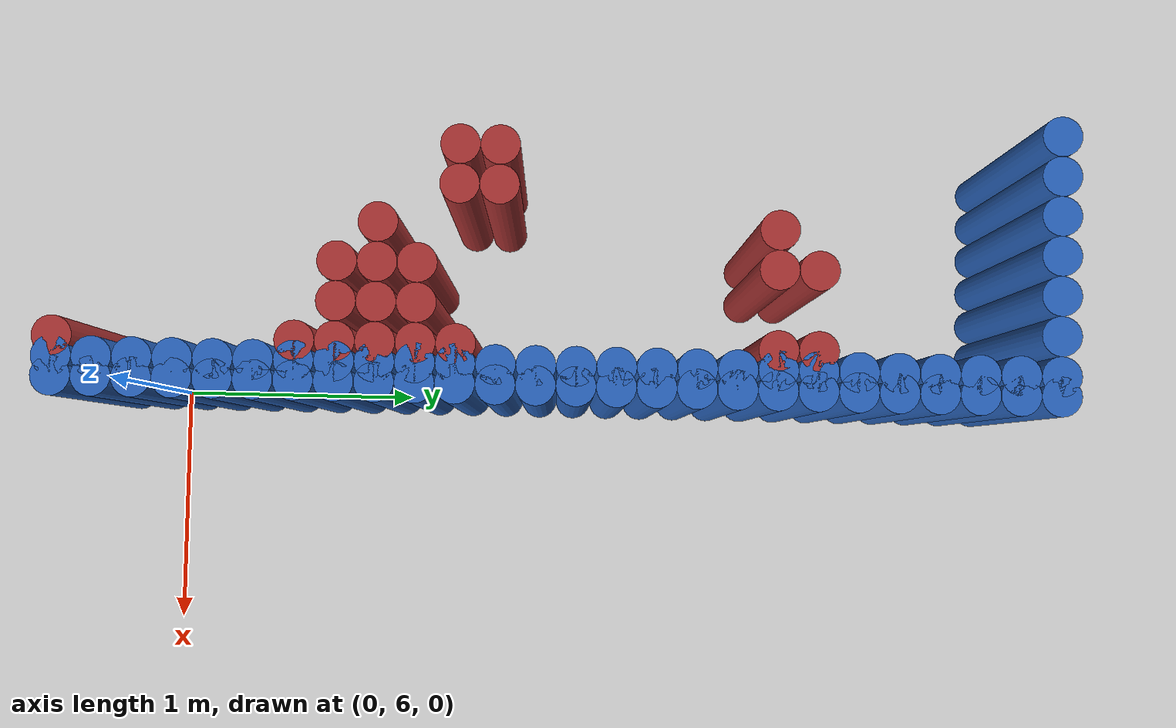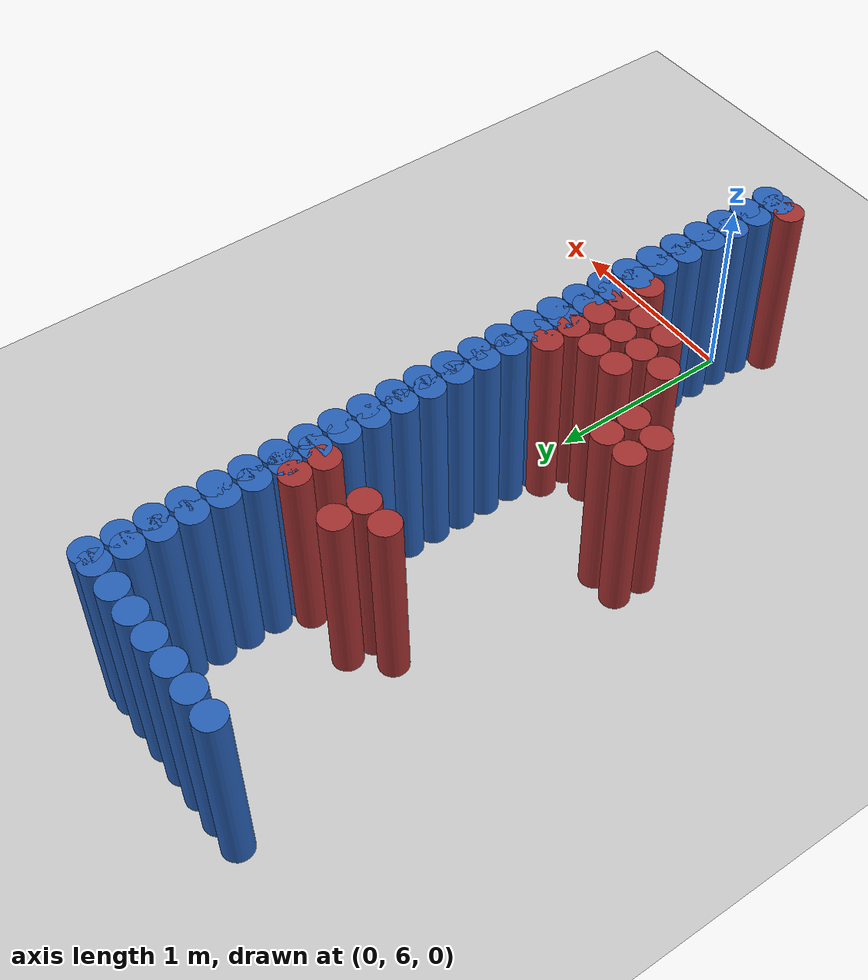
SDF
<sdf version="1.6">
 <world name="barn_world">
  <model name="ground_plane">
   <static>1</static>
   <link name="link">
    <collision name="collision">
     <geometry><plane><normal>0 0 1</normal><size>100 100</size></plane></geometry>
    </collision>
    <visual name="visual">
     <geometry><plane><normal>0 0 1</normal><size>100 100</size></plane></geometry>
     <material>
      <script><uri>file://media/materials/scripts/gazebo.material</uri><name>Gazebo/Grey</name></script>
     </material>
    </visual>
   </link>
  </model>
  <model name="unit_cylinder_256">
   <static>1</static>
   <pose>-0.9000 7.2750 0.5 0 0 0</pose>
   <link name="link">
    <collision name="collision">
     <geometry><cylinder><radius>0.075</radius><length>1</length></cylinder></geometry>
    </collision>
    <visual name="visual">
     <geometry><cylinder><radius>0.075</radius><length>1</length></cylinder></geometry>
     <material><ambient>0.648 0.192 0.192 1</ambient><diffuse>0.648 0.192 0.192 1</diffuse></material>
    </visual>
   </link>
  </model>
  <model name="unit_cylinder_257">
   <static>1</static>
   <pose>-0.9000 7.4250 0.5 0 0 0</pose>
   <link name="link">
    <collision name="collision">
     <geometry><cylinder><radius>0.075</radius><length>1</length></cylinder></geometry>
    </collision>
    <visual name="visual">
     <geometry><cylinder><radius>0.075</radius><length>1</length></cylinder></geometry>
     <material><ambient>0.648 0.192 0.192 1</ambient><diffuse>0.648 0.192 0.192 1</diffuse></material>
    </visual>
   </link>
  </model>
  <model name="unit_cylinder_258">
   <static>1</static>
   <pose>-0.7500 7.2750 0.5 0 0 0</pose>
   <link name="link">
    <collision name="collision">
     <geometry><cylinder><radius>0.075</radius><length>1</length></cylinder></geometry>
    </collision>
    <visual name="visual">
     <geometry><cylinder><radius>0.075</radius><length>1</length></cylinder></geometry>
     <material><ambient>0.648 0.192 0.192 1</ambient><diffuse>0.648 0.192 0.192 1</diffuse></material>
    </visual>
   </link>
  </model>
  <model name="unit_cylinder_259">
   <static>1</static>
   <pose>-0.7500 7.4250 0.5 0 0 0</pose>
   <link name="link">
    <collision name="collision">
     <geometry><cylinder><radius>0.075</radius><length>1</length></cylinder></geometry>
    </collision>
    <visual name="visual">
     <geometry><cylinder><radius>0.075</radius><length>1</length></cylinder></geometry>
     <material><ambient>0.648 0.192 0.192 1</ambient><diffuse>0.648 0.192 0.192 1</diffuse></material>
    </visual>
   </link>
  </model>
  <model name="unit_cylinder_260">
   <static>1</static>
   <pose>-0.6000 6.9750 0.5 0 0 0</pose>
   <link name="link">
    <collision name="collision">
     <geometry><cylinder><radius>0.075</radius><length>1</length></cylinder></geometry>
    </collision>
    <visual name="visual">
     <geometry><cylinder><radius>0.075</radius><length>1</length></cylinder></geometry>
     <material><ambient>0.648 0.192 0.192 1</ambient><diffuse>0.648 0.192 0.192 1</diffuse></material>
    </visual>
   </link>
  </model>
  <model name="unit_cylinder_261">
   <static>1</static>
   <pose>-0.6000 8.4750 0.5 0 0 0</pose>
   <link name="link">
    <collision name="collision">
     <geometry><cylinder><radius>0.075</radius><length>1</length></cylinder></geometry>
    </collision>
    <visual name="visual">
     <geometry><cylinder><radius>0.075</radius><length>1</length></cylinder></geometry>
     <material><ambient>0.648 0.192 0.192 1</ambient><diffuse>0.648 0.192 0.192 1</diffuse></material>
    </visual>
   </link>
  </model>
  <model name="unit_cylinder_262">
   <static>1</static>
   <pose>-0.4500 6.8250 0.5 0 0 0</pose>
   <link name="link">
    <collision name="collision">
     <geometry><cylinder><radius>0.075</radius><length>1</length></cylinder></geometry>
    </collision>
    <visual name="visual">
     <geometry><cylinder><radius>0.075</radius><length>1</length></cylinder></geometry>
     <material><ambient>0.648 0.192 0.192 1</ambient><diffuse>0.648 0.192 0.192 1</diffuse></material>
    </visual>
   </link>
  </model>
  <model name="unit_cylinder_263">
   <static>1</static>
   <pose>-0.4500 6.9750 0.5 0 0 0</pose>
   <link name="link">
    <collision name="collision">
     <geometry><cylinder><radius>0.075</radius><length>1</length></cylinder></geometry>
    </collision>
    <visual name="visual">
     <geometry><cylinder><radius>0.075</radius><length>1</length></cylinder></geometry>
     <material><ambient>0.648 0.192 0.192 1</ambient><diffuse>0.648 0.192 0.192 1</diffuse></material>
    </visual>
   </link>
  </model>
  <model name="unit_cylinder_264">
   <static>1</static>
   <pose>-0.4500 7.1250 0.5 0 0 0</pose>
   <link name="link">
    <collision name="collision">
     <geometry><cylinder><radius>0.075</radius><length>1</length></cylinder></geometry>
    </collision>
    <visual name="visual">
     <geometry><cylinder><radius>0.075</radius><length>1</length></cylinder></geometry>
     <material><ambient>0.648 0.192 0.192 1</ambient><diffuse>0.648 0.192 0.192 1</diffuse></material>
    </visual>
   </link>
  </model>
  <model name="unit_cylinder_265">
   <static>1</static>
   <pose>-0.4500 8.4750 0.5 0 0 0</pose>
   <link name="link">
    <collision name="collision">
     <geometry><cylinder><radius>0.075</radius><length>1</length></cylinder></geometry>
    </collision>
    <visual name="visual">
     <geometry><cylinder><radius>0.075</radius><length>1</length></cylinder></geometry>
     <material><ambient>0.648 0.192 0.192 1</ambient><diffuse>0.648 0.192 0.192 1</diffuse></material>
    </visual>
   </link>
  </model>
  <model name="unit_cylinder_266">
   <static>1</static>
   <pose>-0.4500 8.6250 0.5 0 0 0</pose>
   <link name="link">
    <collision name="collision">
     <geometry><cylinder><radius>0.075</radius><length>1</length></cylinder></geometry>
    </collision>
    <visual name="visual">
     <geometry><cylinder><radius>0.075</radius><length>1</length></cylinder></geometry>
     <material><ambient>0.648 0.192 0.192 1</ambient><diffuse>0.648 0.192 0.192 1</diffuse></material>
    </visual>
   </link>
  </model>
  <model name="unit_cylinder_267">
   <static>1</static>
   <pose>-0.3000 6.8250 0.5 0 0 0</pose>
   <link name="link">
    <collision name="collision">
     <geometry><cylinder><radius>0.075</radius><length>1</length></cylinder></geometry>
    </collision>
    <visual name="visual">
     <geometry><cylinder><radius>0.075</radius><length>1</length></cylinder></geometry>
     <material><ambient>0.648 0.192 0.192 1</ambient><diffuse>0.648 0.192 0.192 1</diffuse></material>
    </visual>
   </link>
  </model>
  <model name="unit_cylinder_268">
   <static>1</static>
   <pose>-0.3000 6.9750 0.5 0 0 0</pose>
   <link name="link">
    <collision name="collision">
     <geometry><cylinder><radius>0.075</radius><length>1</length></cylinder></geometry>
    </collision>
    <visual name="visual">
     <geometry><cylinder><radius>0.075</radius><length>1</length></cylinder></geometry>
     <material><ambient>0.648 0.192 0.192 1</ambient><diffuse>0.648 0.192 0.192 1</diffuse></material>
    </visual>
   </link>
  </model>
  <model name="unit_cylinder_269">
   <static>1</static>
   <pose>-0.3000 7.1250 0.5 0 0 0</pose>
   <link name="link">
    <collision name="collision">
     <geometry><cylinder><radius>0.075</radius><length>1</length></cylinder></geometry>
    </collision>
    <visual name="visual">
     <geometry><cylinder><radius>0.075</radius><length>1</length></cylinder></geometry>
     <material><ambient>0.648 0.192 0.192 1</ambient><diffuse>0.648 0.192 0.192 1</diffuse></material>
    </visual>
   </link>
  </model>
  <model name="unit_cylinder_271">
   <static>1</static>
   <pose>-0.1500 5.7750 0.5 0 0 0</pose>
   <link name="link">
    <collision name="collision">
     <geometry><cylinder><radius>0.075</radius><length>1</length></cylinder></geometry>
    </collision>
    <visual name="visual">
     <geometry><cylinder><radius>0.075</radius><length>1</length></cylinder></geometry>
     <material><ambient>0.648 0.192 0.192 1</ambient><diffuse>0.648 0.192 0.192 1</diffuse></material>
    </visual>
   </link>
  </model>
  <model name="unit_cylinder_272">
   <static>1</static>
   <pose>-0.1500 6.6750 0.5 0 0 0</pose>
   <link name="link">
    <collision name="collision">
     <geometry><cylinder><radius>0.075</radius><length>1</length></cylinder></geometry>
    </collision>
    <visual name="visual">
     <geometry><cylinder><radius>0.075</radius><length>1</length></cylinder></geometry>
     <material><ambient>0.648 0.192 0.192 1</ambient><diffuse>0.648 0.192 0.192 1</diffuse></material>
    </visual>
   </link>
  </model>
  <model name="unit_cylinder_273">
   <static>1</static>
   <pose>-0.1500 6.8250 0.5 0 0 0</pose>
   <link name="link">
    <collision name="collision">
     <geometry><cylinder><radius>0.075</radius><length>1</length></cylinder></geometry>
    </collision>
    <visual name="visual">
     <geometry><cylinder><radius>0.075</radius><length>1</length></cylinder></geometry>
     <material><ambient>0.648 0.192 0.192 1</ambient><diffuse>0.648 0.192 0.192 1</diffuse></material>
    </visual>
   </link>
  </model>
  <model name="unit_cylinder_274">
   <static>1</static>
   <pose>-0.1500 6.9750 0.5 0 0 0</pose>
   <link name="link">
    <collision name="collision">
     <geometry><cylinder><radius>0.075</radius><length>1</length></cylinder></geometry>
    </collision>
    <visual name="visual">
     <geometry><cylinder><radius>0.075</radius><length>1</length></cylinder></geometry>
     <material><ambient>0.648 0.192 0.192 1</ambient><diffuse>0.648 0.192 0.192 1</diffuse></material>
    </visual>
   </link>
  </model>
  <model name="unit_cylinder_275">
   <static>1</static>
   <pose>-0.1500 7.1250 0.5 0 0 0</pose>
   <link name="link">
    <collision name="collision">
     <geometry><cylinder><radius>0.075</radius><length>1</length></cylinder></geometry>
    </collision>
    <visual name="visual">
     <geometry><cylinder><radius>0.075</radius><length>1</length></cylinder></geometry>
     <material><ambient>0.648 0.192 0.192 1</ambient><diffuse>0.648 0.192 0.192 1</diffuse></material>
    </visual>
   </link>
  </model>
  <model name="unit_cylinder_276">
   <static>1</static>
   <pose>-0.1500 7.2750 0.5 0 0 0</pose>
   <link name="link">
    <collision name="collision">
     <geometry><cylinder><radius>0.075</radius><length>1</length></cylinder></geometry>
    </collision>
    <visual name="visual">
     <geometry><cylinder><radius>0.075</radius><length>1</length></cylinder></geometry>
     <material><ambient>0.648 0.192 0.192 1</ambient><diffuse>0.648 0.192 0.192 1</diffuse></material>
    </visual>
   </link>
  </model>
  <model name="unit_cylinder_277">
   <static>1</static>
   <pose>-0.1500 8.4750 0.5 0 0 0</pose>
   <link name="link">
    <collision name="collision">
     <geometry><cylinder><radius>0.075</radius><length>1</length></cylinder></geometry>
    </collision>
    <visual name="visual">
     <geometry><cylinder><radius>0.075</radius><length>1</length></cylinder></geometry>
     <material><ambient>0.648 0.192 0.192 1</ambient><diffuse>0.648 0.192 0.192 1</diffuse></material>
    </visual>
   </link>
  </model>
  <model name="unit_cylinder_278">
   <static>1</static>
   <pose>-0.1500 8.6250 0.5 0 0 0</pose>
   <link name="link">
    <collision name="collision">
     <geometry><cylinder><radius>0.075</radius><length>1</length></cylinder></geometry>
    </collision>
    <visual name="visual">
     <geometry><cylinder><radius>0.075</radius><length>1</length></cylinder></geometry>
     <material><ambient>0.648 0.192 0.192 1</ambient><diffuse>0.648 0.192 0.192 1</diffuse></material>
    </visual>
   </link>
  </model>
  <model name="unit_cylinder_283">
   <static>1</static>
   <pose>0.0000 5.7750 0.5 0 0 0</pose>
   <link name="link">
    <collision name="collision">
     <geometry><cylinder><radius>0.075</radius><length>1</length></cylinder></geometry>
    </collision>
    <visual name="visual">
     <geometry><cylinder><radius>0.075</radius><length>1</length></cylinder></geometry>
     <material><ambient>0.152 0.379 0.72 1</ambient><diffuse>0.152 0.379 0.72 1</diffuse></material>
    </visual>
   </link>
  </model>
  <model name="unit_cylinder_284">
   <static>1</static>
   <pose>0.0000 5.9250 0.5 0 0 0</pose>
   <link name="link">
    <collision name="collision">
     <geometry><cylinder><radius>0.075</radius><length>1</length></cylinder></geometry>
    </collision>
    <visual name="visual">
     <geometry><cylinder><radius>0.075</radius><length>1</length></cylinder></geometry>
     <material><ambient>0.152 0.379 0.72 1</ambient><diffuse>0.152 0.379 0.72 1</diffuse></material>
    </visual>
   </link>
  </model>
  <model name="unit_cylinder_285">
   <static>1</static>
   <pose>0.0000 6.0750 0.5 0 0 0</pose>
   <link name="link">
    <collision name="collision">
     <geometry><cylinder><radius>0.075</radius><length>1</length></cylinder></geometry>
    </collision>
    <visual name="visual">
     <geometry><cylinder><radius>0.075</radius><length>1</length></cylinder></geometry>
     <material><ambient>0.152 0.379 0.72 1</ambient><diffuse>0.152 0.379 0.72 1</diffuse></material>
    </visual>
   </link>
  </model>
  <model name="unit_cylinder_286">
   <static>1</static>
   <pose>0.0000 6.2250 0.5 0 0 0</pose>
   <link name="link">
    <collision name="collision">
     <geometry><cylinder><radius>0.075</radius><length>1</length></cylinder></geometry>
    </collision>
    <visual name="visual">
     <geometry><cylinder><radius>0.075</radius><length>1</length></cylinder></geometry>
     <material><ambient>0.152 0.379 0.72 1</ambient><diffuse>0.152 0.379 0.72 1</diffuse></material>
    </visual>
   </link>
  </model>
  <model name="unit_cylinder_287">
   <static>1</static>
   <pose>0.0000 6.3750 0.5 0 0 0</pose>
   <link name="link">
    <collision name="collision">
     <geometry><cylinder><radius>0.075</radius><length>1</length></cylinder></geometry>
    </collision>
    <visual name="visual">
     <geometry><cylinder><radius>0.075</radius><length>1</length></cylinder></geometry>
     <material><ambient>0.152 0.379 0.72 1</ambient><diffuse>0.152 0.379 0.72 1</diffuse></material>
    </visual>
   </link>
  </model>
  <model name="unit_cylinder_288">
   <static>1</static>
   <pose>0.0000 6.5250 0.5 0 0 0</pose>
   <link name="link">
    <collision name="collision">
     <geometry><cylinder><radius>0.075</radius><length>1</length></cylinder></geometry>
    </collision>
    <visual name="visual">
     <geometry><cylinder><radius>0.075</radius><length>1</length></cylinder></geometry>
     <material><ambient>0.152 0.379 0.72 1</ambient><diffuse>0.152 0.379 0.72 1</diffuse></material>
    </visual>
   </link>
  </model>
  <model name="unit_cylinder_289">
   <static>1</static>
   <pose>0.0000 6.6750 0.5 0 0 0</pose>
   <link name="link">
    <collision name="collision">
     <geometry><cylinder><radius>0.075</radius><length>1</length></cylinder></geometry>
    </collision>
    <visual name="visual">
     <geometry><cylinder><radius>0.075</radius><length>1</length></cylinder></geometry>
     <material><ambient>0.152 0.379 0.72 1</ambient><diffuse>0.152 0.379 0.72 1</diffuse></material>
    </visual>
   </link>
  </model>
  <model name="unit_cylinder_290">
   <static>1</static>
   <pose>0.0000 6.8250 0.5 0 0 0</pose>
   <link name="link">
    <collision name="collision">
     <geometry><cylinder><radius>0.075</radius><length>1</length></cylinder></geometry>
    </collision>
    <visual name="visual">
     <geometry><cylinder><radius>0.075</radius><length>1</length></cylinder></geometry>
     <material><ambient>0.152 0.379 0.72 1</ambient><diffuse>0.152 0.379 0.72 1</diffuse></material>
    </visual>
   </link>
  </model>
  <model name="unit_cylinder_291">
   <static>1</static>
   <pose>0.0000 6.9750 0.5 0 0 0</pose>
   <link name="link">
    <collision name="collision">
     <geometry><cylinder><radius>0.075</radius><length>1</length></cylinder></geometry>
    </collision>
    <visual name="visual">
     <geometry><cylinder><radius>0.075</radius><length>1</length></cylinder></geometry>
     <material><ambient>0.152 0.379 0.72 1</ambient><diffuse>0.152 0.379 0.72 1</diffuse></material>
    </visual>
   </link>
  </model>
  <model name="unit_cylinder_292">
   <static>1</static>
   <pose>0.0000 7.1250 0.5 0 0 0</pose>
   <link name="link">
    <collision name="collision">
     <geometry><cylinder><radius>0.075</radius><length>1</length></cylinder></geometry>
    </collision>
    <visual name="visual">
     <geometry><cylinder><radius>0.075</radius><length>1</length></cylinder></geometry>
     <material><ambient>0.152 0.379 0.72 1</ambient><diffuse>0.152 0.379 0.72 1</diffuse></material>
    </visual>
   </link>
  </model>
  <model name="unit_cylinder_293">
   <static>1</static>
   <pose>0.0000 7.2750 0.5 0 0 0</pose>
   <link name="link">
    <collision name="collision">
     <geometry><cylinder><radius>0.075</radius><length>1</length></cylinder></geometry>
    </collision>
    <visual name="visual">
     <geometry><cylinder><radius>0.075</radius><length>1</length></cylinder></geometry>
     <material><ambient>0.152 0.379 0.72 1</ambient><diffuse>0.152 0.379 0.72 1</diffuse></material>
    </visual>
   </link>
  </model>
  <model name="unit_cylinder_294">
   <static>1</static>
   <pose>0.0000 7.4250 0.5 0 0 0</pose>
   <link name="link">
    <collision name="collision">
     <geometry><cylinder><radius>0.075</radius><length>1</length></cylinder></geometry>
    </collision>
    <visual name="visual">
     <geometry><cylinder><radius>0.075</radius><length>1</length></cylinder></geometry>
     <material><ambient>0.152 0.379 0.72 1</ambient><diffuse>0.152 0.379 0.72 1</diffuse></material>
    </visual>
   </link>
  </model>
  <model name="unit_cylinder_295">
   <static>1</static>
   <pose>0.0000 7.5750 0.5 0 0 0</pose>
   <link name="link">
    <collision name="collision">
     <geometry><cylinder><radius>0.075</radius><length>1</length></cylinder></geometry>
    </collision>
    <visual name="visual">
     <geometry><cylinder><radius>0.075</radius><length>1</length></cylinder></geometry>
     <material><ambient>0.152 0.379 0.72 1</ambient><diffuse>0.152 0.379 0.72 1</diffuse></material>
    </visual>
   </link>
  </model>
  <model name="unit_cylinder_296">
   <static>1</static>
   <pose>0.0000 7.7250 0.5 0 0 0</pose>
   <link name="link">
    <collision name="collision">
     <geometry><cylinder><radius>0.075</radius><length>1</length></cylinder></geometry>
    </collision>
    <visual name="visual">
     <geometry><cylinder><radius>0.075</radius><length>1</length></cylinder></geometry>
     <material><ambient>0.152 0.379 0.72 1</ambient><diffuse>0.152 0.379 0.72 1</diffuse></material>
    </visual>
   </link>
  </model>
  <model name="unit_cylinder_297">
   <static>1</static>
   <pose>0.0000 7.8750 0.5 0 0 0</pose>
   <link name="link">
    <collision name="collision">
     <geometry><cylinder><radius>0.075</radius><length>1</length></cylinder></geometry>
    </collision>
    <visual name="visual">
     <geometry><cylinder><radius>0.075</radius><length>1</length></cylinder></geometry>
     <material><ambient>0.152 0.379 0.72 1</ambient><diffuse>0.152 0.379 0.72 1</diffuse></material>
    </visual>
   </link>
  </model>
  <model name="unit_cylinder_298">
   <static>1</static>
   <pose>0.0000 8.0250 0.5 0 0 0</pose>
   <link name="link">
    <collision name="collision">
     <geometry><cylinder><radius>0.075</radius><length>1</length></cylinder></geometry>
    </collision>
    <visual name="visual">
     <geometry><cylinder><radius>0.075</radius><length>1</length></cylinder></geometry>
     <material><ambient>0.152 0.379 0.72 1</ambient><diffuse>0.152 0.379 0.72 1</diffuse></material>
    </visual>
   </link>
  </model>
  <model name="unit_cylinder_299">
   <static>1</static>
   <pose>0.0000 8.1750 0.5 0 0 0</pose>
   <link name="link">
    <collision name="collision">
     <geometry><cylinder><radius>0.075</radius><length>1</length></cylinder></geometry>
    </collision>
    <visual name="visual">
     <geometry><cylinder><radius>0.075</radius><length>1</length></cylinder></geometry>
     <material><ambient>0.152 0.379 0.72 1</ambient><diffuse>0.152 0.379 0.72 1</diffuse></material>
    </visual>
   </link>
  </model>
  <model name="unit_cylinder_300">
   <static>1</static>
   <pose>0.0000 8.3250 0.5 0 0 0</pose>
   <link name="link">
    <collision name="collision">
     <geometry><cylinder><radius>0.075</radius><length>1</length></cylinder></geometry>
    </collision>
    <visual name="visual">
     <geometry><cylinder><radius>0.075</radius><length>1</length></cylinder></geometry>
     <material><ambient>0.152 0.379 0.72 1</ambient><diffuse>0.152 0.379 0.72 1</diffuse></material>
    </visual>
   </link>
  </model>
  <model name="unit_cylinder_301">
   <static>1</static>
   <pose>0.0000 8.4750 0.5 0 0 0</pose>
   <link name="link">
    <collision name="collision">
     <geometry><cylinder><radius>0.075</radius><length>1</length></cylinder></geometry>
    </collision>
    <visual name="visual">
     <geometry><cylinder><radius>0.075</radius><length>1</length></cylinder></geometry>
     <material><ambient>0.152 0.379 0.72 1</ambient><diffuse>0.152 0.379 0.72 1</diffuse></material>
    </visual>
   </link>
  </model>
  <model name="unit_cylinder_302">
   <static>1</static>
   <pose>0.0000 8.6250 0.5 0 0 0</pose>
   <link name="link">
    <collision name="collision">
     <geometry><cylinder><radius>0.075</radius><length>1</length></cylinder></geometry>
    </collision>
    <visual name="visual">
     <geometry><cylinder><radius>0.075</radius><length>1</length></cylinder></geometry>
     <material><ambient>0.152 0.379 0.72 1</ambient><diffuse>0.152 0.379 0.72 1</diffuse></material>
    </visual>
   </link>
  </model>
  <model name="unit_cylinder_303">
   <static>1</static>
   <pose>0.0000 8.7750 0.5 0 0 0</pose>
   <link name="link">
    <collision name="collision">
     <geometry><cylinder><radius>0.075</radius><length>1</length></cylinder></geometry>
    </collision>
    <visual name="visual">
     <geometry><cylinder><radius>0.075</radius><length>1</length></cylinder></geometry>
     <material><ambient>0.152 0.379 0.72 1</ambient><diffuse>0.152 0.379 0.72 1</diffuse></material>
    </visual>
   </link>
  </model>
  <model name="unit_cylinder_304">
   <static>1</static>
   <pose>0.0000 8.9250 0.5 0 0 0</pose>
   <link name="link">
    <collision name="collision">
     <geometry><cylinder><radius>0.075</radius><length>1</length></cylinder></geometry>
    </collision>
    <visual name="visual">
     <geometry><cylinder><radius>0.075</radius><length>1</length></cylinder></geometry>
     <material><ambient>0.152 0.379 0.72 1</ambient><diffuse>0.152 0.379 0.72 1</diffuse></material>
    </visual>
   </link>
  </model>
  <model name="unit_cylinder_305">
   <static>1</static>
   <pose>0.0000 9.0750 0.5 0 0 0</pose>
   <link name="link">
    <collision name="collision">
     <geometry><cylinder><radius>0.075</radius><length>1</length></cylinder></geometry>
    </collision>
    <visual name="visual">
     <geometry><cylinder><radius>0.075</radius><length>1</length></cylinder></geometry>
     <material><ambient>0.152 0.379 0.72 1</ambient><diffuse>0.152 0.379 0.72 1</diffuse></material>
    </visual>
   </link>
  </model>
  <model name="unit_cylinder_306">
   <static>1</static>
   <pose>0.0000 9.2250 0.5 0 0 0</pose>
   <link name="link">
    <collision name="collision">
     <geometry><cylinder><radius>0.075</radius><length>1</length></cylinder></geometry>
    </collision>
    <visual name="visual">
     <geometry><cylinder><radius>0.075</radius><length>1</length></cylinder></geometry>
     <material><ambient>0.152 0.379 0.72 1</ambient><diffuse>0.152 0.379 0.72 1</diffuse></material>
    </visual>
   </link>
  </model>
  <model name="unit_cylinder_307">
   <static>1</static>
   <pose>0.0000 9.3750 0.5 0 0 0</pose>
   <link name="link">
    <collision name="collision">
     <geometry><cylinder><radius>0.075</radius><length>1</length></cylinder></geometry>
    </collision>
    <visual name="visual">
     <geometry><cylinder><radius>0.075</radius><length>1</length></cylinder></geometry>
     <material><ambient>0.152 0.379 0.72 1</ambient><diffuse>0.152 0.379 0.72 1</diffuse></material>
    </visual>
   </link>
  </model>
  <model name="unit_cylinder_308">
   <static>1</static>
   <pose>0.0000 9.5250 0.5 0 0 0</pose>
   <link name="link">
    <collision name="collision">
     <geometry><cylinder><radius>0.075</radius><length>1</length></cylinder></geometry>
    </collision>
    <visual name="visual">
     <geometry><cylinder><radius>0.075</radius><length>1</length></cylinder></geometry>
     <material><ambient>0.152 0.379 0.72 1</ambient><diffuse>0.152 0.379 0.72 1</diffuse></material>
    </visual>
   </link>
  </model>
  <model name="unit_cylinder_309">
   <static>1</static>
   <pose>-0.0750 9.5250 0.5 0 0 0</pose>
   <link name="link">
    <collision name="collision">
     <geometry><cylinder><radius>0.075</radius><length>1</length></cylinder></geometry>
    </collision>
    <visual name="visual">
     <geometry><cylinder><radius>0.075</radius><length>1</length></cylinder></geometry>
     <material><ambient>0.152 0.379 0.72 1</ambient><diffuse>0.152 0.379 0.72 1</diffuse></material>
    </visual>
   </link>
  </model>
  <model name="unit_cylinder_310">
   <static>1</static>
   <pose>-0.2250 9.5250 0.5 0 0 0</pose>
   <link name="link">
    <collision name="collision">
     <geometry><cylinder><radius>0.075</radius><length>1</length></cylinder></geometry>
    </collision>
    <visual name="visual">
     <geometry><cylinder><radius>0.075</radius><length>1</length></cylinder></geometry>
     <material><ambient>0.152 0.379 0.72 1</ambient><diffuse>0.152 0.379 0.72 1</diffuse></material>
    </visual>
   </link>
  </model>
  <model name="unit_cylinder_311">
   <static>1</static>
   <pose>-0.3750 9.5250 0.5 0 0 0</pose>
   <link name="link">
    <collision name="collision">
     <geometry><cylinder><radius>0.075</radius><length>1</length></cylinder></geometry>
    </collision>
    <visual name="visual">
     <geometry><cylinder><radius>0.075</radius><length>1</length></cylinder></geometry>
     <material><ambient>0.152 0.379 0.72 1</ambient><diffuse>0.152 0.379 0.72 1</diffuse></material>
    </visual>
   </link>
  </model>
  <model name="unit_cylinder_312">
   <static>1</static>
   <pose>-0.5250 9.5250 0.5 0 0 0</pose>
   <link name="link">
    <collision name="collision">
     <geometry><cylinder><radius>0.075</radius><length>1</length></cylinder></geometry>
    </collision>
    <visual name="visual">
     <geometry><cylinder><radius>0.075</radius><length>1</length></cylinder></geometry>
     <material><ambient>0.152 0.379 0.72 1</ambient><diffuse>0.152 0.379 0.72 1</diffuse></material>
    </visual>
   </link>
  </model>
  <model name="unit_cylinder_313">
   <static>1</static>
   <pose>-0.6750 9.5250 0.5 0 0 0</pose>
   <link name="link">
    <collision name="collision">
     <geometry><cylinder><radius>0.075</radius><length>1</length></cylinder></geometry>
    </collision>
    <visual name="visual">
     <geometry><cylinder><radius>0.075</radius><length>1</length></cylinder></geometry>
     <material><ambient>0.152 0.379 0.72 1</ambient><diffuse>0.152 0.379 0.72 1</diffuse></material>
    </visual>
   </link>
  </model>
  <model name="unit_cylinder_314">
   <static>1</static>
   <pose>-0.8250 9.5250 0.5 0 0 0</pose>
   <link name="link">
    <collision name="collision">
     <geometry><cylinder><radius>0.075</radius><length>1</length></cylinder></geometry>
    </collision>
    <visual name="visual">
     <geometry><cylinder><radius>0.075</radius><length>1</length></cylinder></geometry>
     <material><ambient>0.152 0.379 0.72 1</ambient><diffuse>0.152 0.379 0.72 1</diffuse></material>
    </visual>
   </link>
  </model>
  <model name="unit_cylinder_315">
   <static>1</static>
   <pose>-0.9750 9.5250 0.5 0 0 0</pose>
   <link name="link">
    <collision name="collision">
     <geometry><cylinder><radius>0.075</radius><length>1</length></cylinder></geometry>
    </collision>
    <visual name="visual">
     <geometry><cylinder><radius>0.075</radius><length>1</length></cylinder></geometry>
     <material><ambient>0.152 0.379 0.72 1</ambient><diffuse>0.152 0.379 0.72 1</diffuse></material>
    </visual>
   </link>
  </model>
  <model name="unit_cylinder_347">
   <static>1</static>
   <pose>-0.0750 5.7750 0.5 0 0 0</pose>
   <link name="link">
    <collision name="collision">
     <geometry><cylinder><radius>0.075</radius><length>1</length></cylinder></geometry>
    </collision>
    <visual name="visual">
     <geometry><cylinder><radius>0.075</radius><length>1</length></cylinder></geometry>
     <material><ambient>0.152 0.379 0.72 1</ambient><diffuse>0.152 0.379 0.72 1</diffuse></material>
    </visual>
   </link>
  </model>
  <model name="unit_cylinder_349">
   <static>1</static>
   <pose>-0.0750 5.9250 0.5 0 0 0</pose>
   <link name="link">
    <collision name="collision">
     <geometry><cylinder><radius>0.075</radius><length>1</length></cylinder></geometry>
    </collision>
    <visual name="visual">
     <geometry><cylinder><radius>0.075</radius><length>1</length></cylinder></geometry>
     <material><ambient>0.152 0.379 0.72 1</ambient><diffuse>0.152 0.379 0.72 1</diffuse></material>
    </visual>
   </link>
  </model>
  <model name="unit_cylinder_351">
   <static>1</static>
   <pose>-0.0750 6.0750 0.5 0 0 0</pose>
   <link name="link">
    <collision name="collision">
     <geometry><cylinder><radius>0.075</radius><length>1</length></cylinder></geometry>
    </collision>
    <visual name="visual">
     <geometry><cylinder><radius>0.075</radius><length>1</length></cylinder></geometry>
     <material><ambient>0.152 0.379 0.72 1</ambient><diffuse>0.152 0.379 0.72 1</diffuse></material>
    </visual>
   </link>
  </model>
  <model name="unit_cylinder_353">
   <static>1</static>
   <pose>-0.0750 6.2250 0.5 0 0 0</pose>
   <link name="link">
    <collision name="collision">
     <geometry><cylinder><radius>0.075</radius><length>1</length></cylinder></geometry>
    </collision>
    <visual name="visual">
     <geometry><cylinder><radius>0.075</radius><length>1</length></cylinder></geometry>
     <material><ambient>0.152 0.379 0.72 1</ambient><diffuse>0.152 0.379 0.72 1</diffuse></material>
    </visual>
   </link>
  </model>
  <model name="unit_cylinder_355">
   <static>1</static>
   <pose>-0.0750 6.3750 0.5 0 0 0</pose>
   <link name="link">
    <collision name="collision">
     <geometry><cylinder><radius>0.075</radius><length>1</length></cylinder></geometry>
    </collision>
    <visual name="visual">
     <geometry><cylinder><radius>0.075</radius><length>1</length></cylinder></geometry>
     <material><ambient>0.152 0.379 0.72 1</ambient><diffuse>0.152 0.379 0.72 1</diffuse></material>
    </visual>
   </link>
  </model>
  <model name="unit_cylinder_357">
   <static>1</static>
   <pose>-0.0750 6.5250 0.5 0 0 0</pose>
   <link name="link">
    <collision name="collision">
     <geometry><cylinder><radius>0.075</radius><length>1</length></cylinder></geometry>
    </collision>
    <visual name="visual">
     <geometry><cylinder><radius>0.075</radius><length>1</length></cylinder></geometry>
     <material><ambient>0.152 0.379 0.72 1</ambient><diffuse>0.152 0.379 0.72 1</diffuse></material>
    </visual>
   </link>
  </model>
  <model name="unit_cylinder_359">
   <static>1</static>
   <pose>-0.0750 6.6750 0.5 0 0 0</pose>
   <link name="link">
    <collision name="collision">
     <geometry><cylinder><radius>0.075</radius><length>1</length></cylinder></geometry>
    </collision>
    <visual name="visual">
     <geometry><cylinder><radius>0.075</radius><length>1</length></cylinder></geometry>
     <material><ambient>0.152 0.379 0.72 1</ambient><diffuse>0.152 0.379 0.72 1</diffuse></material>
    </visual>
   </link>
  </model>
  <model name="unit_cylinder_361">
   <static>1</static>
   <pose>-0.0750 6.8250 0.5 0 0 0</pose>
   <link name="link">
    <collision name="collision">
     <geometry><cylinder><radius>0.075</radius><length>1</length></cylinder></geometry>
    </collision>
    <visual name="visual">
     <geometry><cylinder><radius>0.075</radius><length>1</length></cylinder></geometry>
     <material><ambient>0.152 0.379 0.72 1</ambient><diffuse>0.152 0.379 0.72 1</diffuse></material>
    </visual>
   </link>
  </model>
  <model name="unit_cylinder_363">
   <static>1</static>
   <pose>-0.0750 6.9750 0.5 0 0 0</pose>
   <link name="link">
    <collision name="collision">
     <geometry><cylinder><radius>0.075</radius><length>1</length></cylinder></geometry>
    </collision>
    <visual name="visual">
     <geometry><cylinder><radius>0.075</radius><length>1</length></cylinder></geometry>
     <material><ambient>0.152 0.379 0.72 1</ambient><diffuse>0.152 0.379 0.72 1</diffuse></material>
    </visual>
   </link>
  </model>
  <model name="unit_cylinder_365">
   <static>1</static>
   <pose>-0.0750 7.1250 0.5 0 0 0</pose>
   <link name="link">
    <collision name="collision">
     <geometry><cylinder><radius>0.075</radius><length>1</length></cylinder></geometry>
    </collision>
    <visual name="visual">
     <geometry><cylinder><radius>0.075</radius><length>1</length></cylinder></geometry>
     <material><ambient>0.152 0.379 0.72 1</ambient><diffuse>0.152 0.379 0.72 1</diffuse></material>
    </visual>
   </link>
  </model>
  <model name="unit_cylinder_367">
   <static>1</static>
   <pose>-0.0750 7.2750 0.5 0 0 0</pose>
   <link name="link">
    <collision name="collision">
     <geometry><cylinder><radius>0.075</radius><length>1</length></cylinder></geometry>
    </collision>
    <visual name="visual">
     <geometry><cylinder><radius>0.075</radius><length>1</length></cylinder></geometry>
     <material><ambient>0.152 0.379 0.72 1</ambient><diffuse>0.152 0.379 0.72 1</diffuse></material>
    </visual>
   </link>
  </model>
  <model name="unit_cylinder_369">
   <static>1</static>
   <pose>-0.0750 7.4250 0.5 0 0 0</pose>
   <link name="link">
    <collision name="collision">
     <geometry><cylinder><radius>0.075</radius><length>1</length></cylinder></geometry>
    </collision>
    <visual name="visual">
     <geometry><cylinder><radius>0.075</radius><length>1</length></cylinder></geometry>
     <material><ambient>0.152 0.379 0.72 1</ambient><diffuse>0.152 0.379 0.72 1</diffuse></material>
    </visual>
   </link>
  </model>
  <model name="unit_cylinder_371">
   <static>1</static>
   <pose>-0.0750 7.5750 0.5 0 0 0</pose>
   <link name="link">
    <collision name="collision">
     <geometry><cylinder><radius>0.075</radius><length>1</length></cylinder></geometry>
    </collision>
    <visual name="visual">
     <geometry><cylinder><radius>0.075</radius><length>1</length></cylinder></geometry>
     <material><ambient>0.152 0.379 0.72 1</ambient><diffuse>0.152 0.379 0.72 1</diffuse></material>
    </visual>
   </link>
  </model>
  <model name="unit_cylinder_373">
   <static>1</static>
   <pose>-0.0750 7.7250 0.5 0 0 0</pose>
   <link name="link">
    <collision name="collision">
     <geometry><cylinder><radius>0.075</radius><length>1</length></cylinder></geometry>
    </collision>
    <visual name="visual">
     <geometry><cylinder><radius>0.075</radius><length>1</length></cylinder></geometry>
     <material><ambient>0.152 0.379 0.72 1</ambient><diffuse>0.152 0.379 0.72 1</diffuse></material>
    </visual>
   </link>
  </model>
  <model name="unit_cylinder_375">
   <static>1</static>
   <pose>-0.0750 7.8750 0.5 0 0 0</pose>
   <link name="link">
    <collision name="collision">
     <geometry><cylinder><radius>0.075</radius><length>1</length></cylinder></geometry>
    </collision>
    <visual name="visual">
     <geometry><cylinder><radius>0.075</radius><length>1</length></cylinder></geometry>
     <material><ambient>0.152 0.379 0.72 1</ambient><diffuse>0.152 0.379 0.72 1</diffuse></material>
    </visual>
   </link>
  </model>
  <model name="unit_cylinder_377">
   <static>1</static>
   <pose>-0.0750 8.0250 0.5 0 0 0</pose>
   <link name="link">
    <collision name="collision">
     <geometry><cylinder><radius>0.075</radius><length>1</length></cylinder></geometry>
    </collision>
    <visual name="visual">
     <geometry><cylinder><radius>0.075</radius><length>1</length></cylinder></geometry>
     <material><ambient>0.152 0.379 0.72 1</ambient><diffuse>0.152 0.379 0.72 1</diffuse></material>
    </visual>
   </link>
  </model>
  <model name="unit_cylinder_379">
   <static>1</static>
   <pose>-0.0750 8.1750 0.5 0 0 0</pose>
   <link name="link">
    <collision name="collision">
     <geometry><cylinder><radius>0.075</radius><length>1</length></cylinder></geometry>
    </collision>
    <visual name="visual">
     <geometry><cylinder><radius>0.075</radius><length>1</length></cylinder></geometry>
     <material><ambient>0.152 0.379 0.72 1</ambient><diffuse>0.152 0.379 0.72 1</diffuse></material>
    </visual>
   </link>
  </model>
  <model name="unit_cylinder_381">
   <static>1</static>
   <pose>-0.0750 8.3250 0.5 0 0 0</pose>
   <link name="link">
    <collision name="collision">
     <geometry><cylinder><radius>0.075</radius><length>1</length></cylinder></geometry>
    </collision>
    <visual name="visual">
     <geometry><cylinder><radius>0.075</radius><length>1</length></cylinder></geometry>
     <material><ambient>0.152 0.379 0.72 1</ambient><diffuse>0.152 0.379 0.72 1</diffuse></material>
    </visual>
   </link>
  </model>
  <model name="unit_cylinder_383">
   <static>1</static>
   <pose>-0.0750 8.4750 0.5 0 0 0</pose>
   <link name="link">
    <collision name="collision">
     <geometry><cylinder><radius>0.075</radius><length>1</length></cylinder></geometry>
    </collision>
    <visual name="visual">
     <geometry><cylinder><radius>0.075</radius><length>1</length></cylinder></geometry>
     <material><ambient>0.152 0.379 0.72 1</ambient><diffuse>0.152 0.379 0.72 1</diffuse></material>
    </visual>
   </link>
  </model>
  <model name="unit_cylinder_385">
   <static>1</static>
   <pose>-0.0750 8.6250 0.5 0 0 0</pose>
   <link name="link">
    <collision name="collision">
     <geometry><cylinder><radius>0.075</radius><length>1</length></cylinder></geometry>
    </collision>
    <visual name="visual">
     <geometry><cylinder><radius>0.075</radius><length>1</length></cylinder></geometry>
     <material><ambient>0.152 0.379 0.72 1</ambient><diffuse>0.152 0.379 0.72 1</diffuse></material>
    </visual>
   </link>
  </model>
  <model name="unit_cylinder_387">
   <static>1</static>
   <pose>-0.0750 8.7750 0.5 0 0 0</pose>
   <link name="link">
    <collision name="collision">
     <geometry><cylinder><radius>0.075</radius><length>1</length></cylinder></geometry>
    </collision>
    <visual name="visual">
     <geometry><cylinder><radius>0.075</radius><length>1</length></cylinder></geometry>
     <material><ambient>0.152 0.379 0.72 1</ambient><diffuse>0.152 0.379 0.72 1</diffuse></material>
    </visual>
   </link>
  </model>
  <model name="unit_cylinder_389">
   <static>1</static>
   <pose>-0.0750 8.9250 0.5 0 0 0</pose>
   <link name="link">
    <collision name="collision">
     <geometry><cylinder><radius>0.075</radius><length>1</length></cylinder></geometry>
    </collision>
    <visual name="visual">
     <geometry><cylinder><radius>0.075</radius><length>1</length></cylinder></geometry>
     <material><ambient>0.152 0.379 0.72 1</ambient><diffuse>0.152 0.379 0.72 1</diffuse></material>
    </visual>
   </link>
  </model>
  <model name="unit_cylinder_391">
   <static>1</static>
   <pose>-0.0750 9.0750 0.5 0 0 0</pose>
   <link name="link">
    <collision name="collision">
     <geometry><cylinder><radius>0.075</radius><length>1</length></cylinder></geometry>
    </collision>
    <visual name="visual">
     <geometry><cylinder><radius>0.075</radius><length>1</length></cylinder></geometry>
     <material><ambient>0.152 0.379 0.72 1</ambient><diffuse>0.152 0.379 0.72 1</diffuse></material>
    </visual>
   </link>
  </model>
  <model name="unit_cylinder_393">
   <static>1</static>
   <pose>-0.0750 9.2250 0.5 0 0 0</pose>
   <link name="link">
    <collision name="collision">
     <geometry><cylinder><radius>0.075</radius><length>1</length></cylinder></geometry>
    </collision>
    <visual name="visual">
     <geometry><cylinder><radius>0.075</radius><length>1</length></cylinder></geometry>
     <material><ambient>0.152 0.379 0.72 1</ambient><diffuse>0.152 0.379 0.72 1</diffuse></material>
    </visual>
   </link>
  </model>
  <model name="unit_cylinder_395">
   <static>1</static>
   <pose>-0.0750 9.3750 0.5 0 0 0</pose>
   <link name="link">
    <collision name="collision">
     <geometry><cylinder><radius>0.075</radius><length>1</length></cylinder></geometry>
    </collision>
    <visual name="visual">
     <geometry><cylinder><radius>0.075</radius><length>1</length></cylinder></geometry>
     <material><ambient>0.152 0.379 0.72 1</ambient><diffuse>0.152 0.379 0.72 1</diffuse></material>
    </visual>
   </link>
  </model>
 </world>
</sdf>
